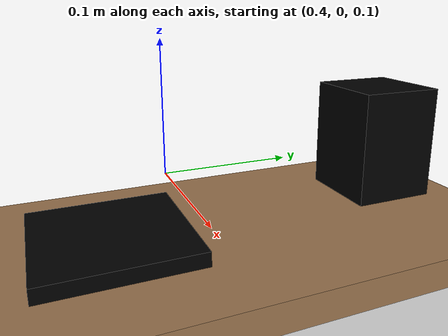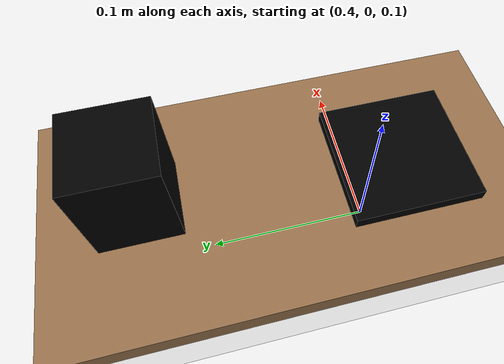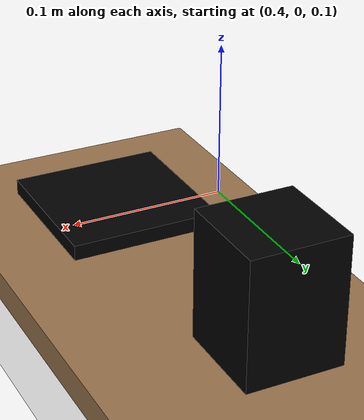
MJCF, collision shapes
<mujoco model="cup_on_coaster_gs">
  <compiler meshdir="../../../meshes"/>

  <visual>
    <map znear="0.001"/>
  </visual>

  <asset>
    <!-- meshdir resolved to assets/meshes/ via robotiq.xml compiler -->
    <mesh name="cup_mesh"     file="cup_on_coaster/blue_water_cup/blue_water_cup.obj"/>
    <mesh name="coaster_mesh" file="cup_on_coaster/coaster/coaster.obj"/>

    <material name="cup_mat"     rgba="0.1 0.45 0.85 0.85" specular="0.5" shininess="0.5"/>
    <material name="coaster_mat" rgba="0.65 0.45 0.3 1"    reflectance="0.15"/>
  </asset>

  <worldbody>
    <light name="demo_light" pos="0 0 1.5" dir="0 0 -1"/>
    <geom name="floor" type="plane" size="2 2 0.1" rgba="0.85 0.85 0.85 1"/>

    <!-- Table matches background GS coordinate frame (table30_06_put_cup_on_coaster).
         center z=0.0642, half-height=0.01 → top surface z=0.0742.              -->
    <geom name="table" pos="0.45 0.06 0.0642" size="0.33 0.525 0.01" type="box"
          contype="1" conaffinity="1" rgba="0.6 0.45 0.3 1"/>

    <!-- CUP -->
    <body name="cup_gs" pos="0.45 0.15 0.12">
      <freejoint name="cup_joint"/>
      <body name="cup" pos="0 0 0">
        <geom name="cup_col" type="box" size="0.03 0.03 0.04"
              mass="0.005" friction="1.2 0.05 0.01" pos="0 0 0.005"
              rgba="0 0 0 0" contype="1" conaffinity="1"/>
        <geom name="cup_vis" type="mesh" mesh="cup_mesh" material="cup_mat"
              quat="0.490144 -0.86997 -0.0468224 0.0267941" density="0"
              contype="0" conaffinity="0" group="1"/>
        <site name="cup_site" pos="0 0 0" size="0.004" rgba="1 0 0 0"/>
      </body>
    </body>

    <!-- COASTER -->
    <body name="coaster_gs" pos="0.45 -0.05 0.08">
      <freejoint name="coaster_joint"/>
      <body name="coaster" pos="0 0 0">
        <geom name="coaster_col" type="box" size="0.05 0.05 0.005"
              mass="0.05" friction="1.2 0.05 0.01"
              rgba="0 0 0 0" contype="1" conaffinity="1"/>
        <geom name="coaster_vis" type="mesh" mesh="coaster_mesh" material="coaster_mat"
              quat="0.941624 0.302989 -0.0408287 -0.140976" density="0"
              contype="0" conaffinity="0" group="1"/>
        <site name="coaster_site" pos="0 0 0" size="0.004" rgba="0 1 0 0"/>
      </body>
    </body>

    <!-- Camera matching background GS coordinate frame (table30_06_put_cup_on_coaster) -->
    <camera name="env1_cam" pos="1.15 0.022 0.7"
            xyaxes="-0.029 1.000 0.000 -0.488 -0.014 0.872" fovy="43.365"/>
    <camera name="env0_cam" pos="0.488 1.0 0.6"
          xyaxes="-0.9994 0.0338 0.0000 -0.0107 -0.3168 0.9484" fovy="43.365"/>
  </worldbody>

</mujoco>
